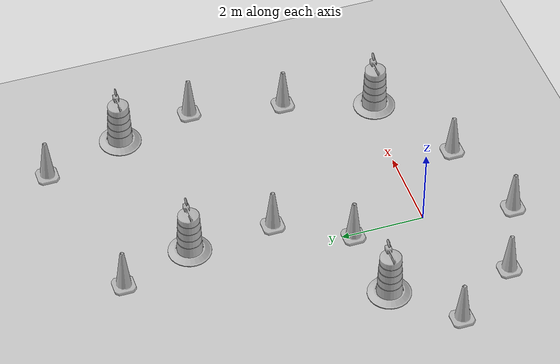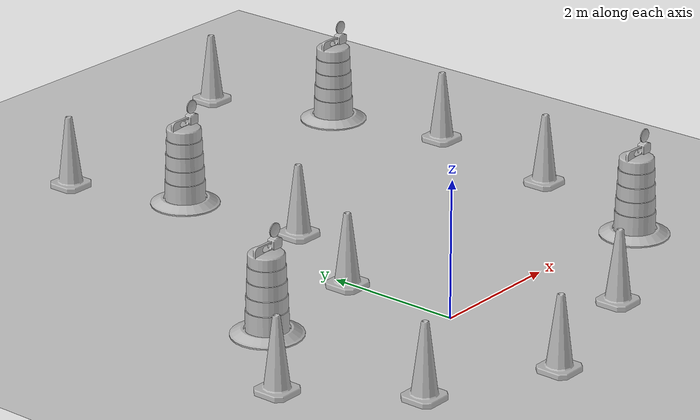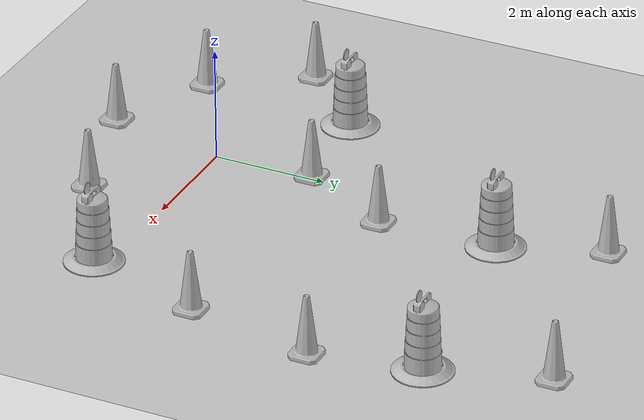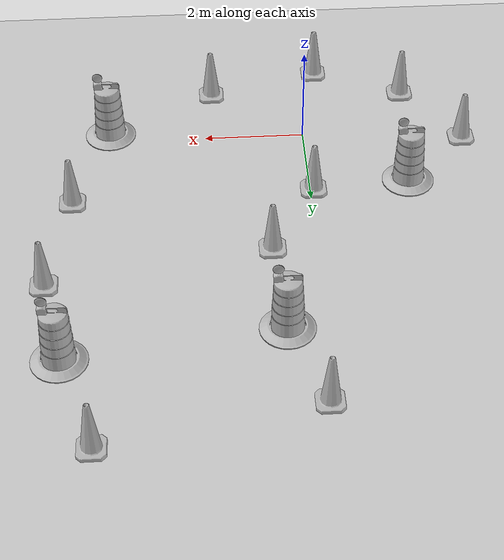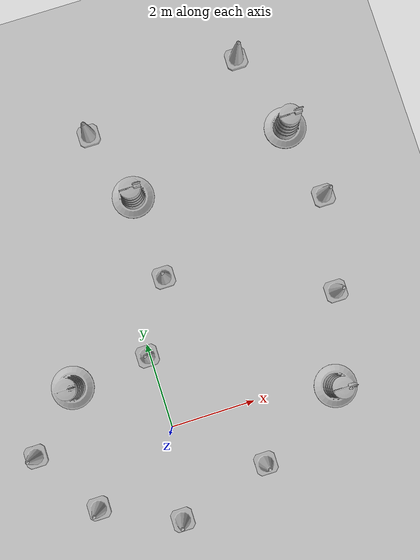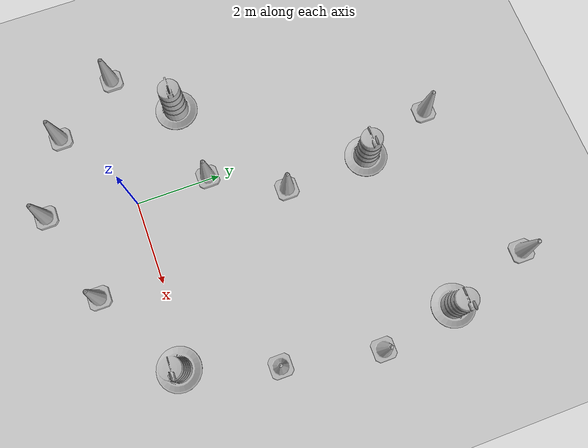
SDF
<sdf version="1.7">
 <world name="default">
  <light name="sun" type="directional">
   <pose>0 0 10 0 -0 0</pose>
   <diffuse>0.8 0.8 0.8 1</diffuse>
   <specular>0.2 0.2 0.2 1</specular>
   <attenuation>
    <range>1000</range>
    <constant>0.9</constant>
    <linear>0.01</linear>
    <quadratic>0.001</quadratic>
   </attenuation>
   <direction>-0.5 0.1 -0.9</direction>
   <spot><inner_angle>0</inner_angle><outer_angle>0</outer_angle><falloff>0</falloff></spot>
  </light>
  <model name="ground_plane">
   <static>1</static>
   <link name="link">
    <collision name="collision">
     <geometry><plane><normal>0 0 1</normal><size>100 100</size></plane></geometry>
     <surface>
      <contact><collide_bitmask>65535</collide_bitmask></contact>
      <friction><ode><mu>100</mu><mu2>50</mu2></ode></friction>
     </surface>
    </collision>
    <visual name="visual">
     <cast_shadows>0</cast_shadows>
     <geometry><plane><normal>0 0 1</normal><size>100 100</size></plane></geometry>
     <material>
      <script><uri>file://media/materials/scripts/gazebo.material</uri><name>Gazebo/Grey</name></script>
     </material>
    </visual>
   </link>
  </model>
  <gravity>0 0 -9.8</gravity>
  <magnetic_field>6e-06 2.3e-05 -4.2e-05</magnetic_field>
  <atmosphere type="adiabatic"/>
  <physics type="ode">
   <max_step_size>0.001</max_step_size>
   <real_time_factor>1</real_time_factor>
   <real_time_update_rate>1000</real_time_update_rate>
  </physics>
  <scene><ambient>0.4 0.4 0.4 1</ambient><background>0.7 0.7 0.7 1</background><shadows>1</shadows></scene>
  <audio><device>default</device></audio>
  <spherical_coordinates>
   <surface_model>EARTH_WGS84</surface_model>
   <latitude_deg>0</latitude_deg>
   <longitude_deg>0</longitude_deg>
   <elevation>0</elevation>
   <heading_deg>0</heading_deg>
  </spherical_coordinates>
  <model name="Construction Barrel">
   <link name="link">
    <inertial>
     <pose>0 0 0.4 0 -0 0</pose>
     <mass>500</mass>
     <inertia><ixx>51.2096</ixx><iyy>51.2096</iyy><izz>25</izz><ixy>0</ixy><ixz>0</ixz><iyz>0</iyz></inertia>
    </inertial>
    <collision name="collision">
     <geometry><mesh><uri>model://construction_barrel/meshes/construction_barrel.dae</uri></mesh></geometry>
    </collision>
    <visual name="visual">
     <geometry><mesh><uri>model://construction_barrel/meshes/construction_barrel.dae</uri></mesh></geometry>
    </visual>
   </link>
   <pose>-1.95305 1.56322 -2e-06 7e-06 -4e-06 -2.3e-05</pose>
  </model>
  <model name="Construction Cone">
   <link name="link">
    <collision name="collision">
     <geometry>
      <mesh><scale>10 10 10</scale><uri>model://construction_cone/meshes/construction_cone.dae</uri></mesh>
     </geometry>
    </collision>
    <visual name="visual">
     <geometry>
      <mesh><scale>10 10 10</scale><uri>model://construction_cone/meshes/construction_cone.dae</uri></mesh>
     </geometry>
    </visual>
    <inertial>
     <inertia><ixx>1</ixx><ixy>0</ixy><ixz>0</ixz><iyy>1</iyy><iyz>0</iyz><izz>1</izz></inertia>
     <mass>1</mass>
    </inertial>
   </link>
   <pose>-2.16556 -1.27217 -1e-05 0 1e-06 0</pose>
  </model>
  <model name="Construction Cone_clone">
   <link name="link">
    <collision name="collision">
     <geometry>
      <mesh><scale>10 10 10</scale><uri>model://construction_cone/meshes/construction_cone.dae</uri></mesh>
     </geometry>
    </collision>
    <visual name="visual">
     <geometry>
      <mesh><scale>10 10 10</scale><uri>model://construction_cone/meshes/construction_cone.dae</uri></mesh>
     </geometry>
    </visual>
    <inertial>
     <inertia><ixx>1</ixx><ixy>0</ixy><ixz>0</ixz><iyy>1</iyy><iyz>0</iyz><izz>1</izz></inertia>
     <mass>1</mass>
    </inertial>
   </link>
   <pose>-0.393419 -2.09765 -0 0 -1e-06 0</pose>
  </model>
  <model name="Construction Cone_clone_0">
   <link name="link">
    <collision name="collision">
     <geometry>
      <mesh><scale>10 10 10</scale><uri>model://construction_cone/meshes/construction_cone.dae</uri></mesh>
     </geometry>
    </collision>
    <visual name="visual">
     <geometry>
      <mesh><scale>10 10 10</scale><uri>model://construction_cone/meshes/construction_cone.dae</uri></mesh>
     </geometry>
    </visual>
    <inertial>
     <inertia><ixx>1</ixx><ixy>0</ixy><ixz>0</ixz><iyy>1</iyy><iyz>0</iyz><izz>1</izz></inertia>
     <mass>1</mass>
    </inertial>
   </link>
   <pose>1.82801 -1.44697 0 -1e-06 0 0</pose>
  </model>
  <model name="Construction Barrel_clone">
   <link name="link">
    <inertial>
     <pose>0 0 0.4 0 -0 0</pose>
     <mass>500</mass>
     <inertia><ixx>51.2096</ixx><iyy>51.2096</iyy><izz>25</izz><ixy>0</ixy><ixz>0</ixz><iyz>0</iyz></inertia>
    </inertial>
    <collision name="collision">
     <geometry><mesh><uri>model://construction_barrel/meshes/construction_barrel.dae</uri></mesh></geometry>
    </collision>
    <visual name="visual">
     <geometry><mesh><uri>model://construction_barrel/meshes/construction_barrel.dae</uri></mesh></geometry>
    </visual>
   </link>
   <pose>3.93408 -0.235384 -0 0 0 -2.5e-05</pose>
  </model>
  <model name="Construction Cone_clone_0_clone">
   <link name="link">
    <collision name="collision">
     <geometry>
      <mesh><scale>10 10 10</scale><uri>model://construction_cone/meshes/construction_cone.dae</uri></mesh>
     </geometry>
    </collision>
    <visual name="visual">
     <geometry>
      <mesh><scale>10 10 10</scale><uri>model://construction_cone/meshes/construction_cone.dae</uri></mesh>
     </geometry>
    </visual>
    <inertial>
     <inertia><ixx>1</ixx><ixy>0</ixy><ixz>0</ixz><iyy>1</iyy><iyz>0</iyz><izz>1</izz></inertia>
     <mass>1</mass>
    </inertial>
   </link>
   <pose>-0.06439 1.74713 -0 -0 -0 -0</pose>
  </model>
  <model name="Construction Cone_clone_0_clone_0">
   <link name="link">
    <collision name="collision">
     <geometry>
      <mesh><scale>10 10 10</scale><uri>model://construction_cone/meshes/construction_cone.dae</uri></mesh>
     </geometry>
    </collision>
    <visual name="visual">
     <geometry>
      <mesh><scale>10 10 10</scale><uri>model://construction_cone/meshes/construction_cone.dae</uri></mesh>
     </geometry>
    </visual>
    <inertial>
     <inertia><ixx>1</ixx><ixy>0</ixy><ixz>0</ixz><iyy>1</iyy><iyz>0</iyz><izz>1</izz></inertia>
     <mass>1</mass>
    </inertial>
   </link>
   <pose>0.850562 3.40459 -1e-05 0 1e-06 0</pose>
  </model>
  <model name="Construction Cone_clone_0_clone_1">
   <link name="link">
    <collision name="collision">
     <geometry>
      <mesh><scale>10 10 10</scale><uri>model://construction_cone/meshes/construction_cone.dae</uri></mesh>
     </geometry>
    </collision>
    <visual name="visual">
     <geometry>
      <mesh><scale>10 10 10</scale><uri>model://construction_cone/meshes/construction_cone.dae</uri></mesh>
     </geometry>
    </visual>
    <inertial>
     <inertia><ixx>1</ixx><ixy>0</ixy><ixz>0</ixz><iyy>1</iyy><iyz>0</iyz><izz>1</izz></inertia>
     <mass>1</mass>
    </inertial>
   </link>
   <pose>0.142021 7.19837 -0 0 -0 0</pose>
  </model>
  <model name="Construction Cone_clone_0_clone_2">
   <link name="link">
    <collision name="collision">
     <geometry>
      <mesh><scale>10 10 10</scale><uri>model://construction_cone/meshes/construction_cone.dae</uri></mesh>
     </geometry>
    </collision>
    <visual name="visual">
     <geometry>
      <mesh><scale>10 10 10</scale><uri>model://construction_cone/meshes/construction_cone.dae</uri></mesh>
     </geometry>
    </visual>
    <inertial>
     <inertia><ixx>1</ixx><ixy>0</ixy><ixz>0</ixz><iyy>1</iyy><iyz>0</iyz><izz>1</izz></inertia>
     <mass>1</mass>
    </inertial>
   </link>
   <pose>5.06325 4.13954 0 -0 -0 -0</pose>
  </model>
  <model name="Construction Cone_clone_0_clone_3">
   <link name="link">
    <collision name="collision">
     <geometry>
      <mesh><scale>10 10 10</scale><uri>model://construction_cone/meshes/construction_cone.dae</uri></mesh>
     </geometry>
    </collision>
    <visual name="visual">
     <geometry>
      <mesh><scale>10 10 10</scale><uri>model://construction_cone/meshes/construction_cone.dae</uri></mesh>
     </geometry>
    </visual>
    <inertial>
     <inertia><ixx>1</ixx><ixy>0</ixy><ixz>0</ixz><iyy>1</iyy><iyz>0</iyz><izz>1</izz></inertia>
     <mass>1</mass>
    </inertial>
   </link>
   <pose>-3.22094 0.296625 -0 0 -0 0</pose>
  </model>
  <model name="Construction Cone_clone_0_clone_4">
   <link name="link">
    <collision name="collision">
     <geometry>
      <mesh><scale>10 10 10</scale><uri>model://construction_cone/meshes/construction_cone.dae</uri></mesh>
     </geometry>
    </collision>
    <visual name="visual">
     <geometry>
      <mesh><scale>10 10 10</scale><uri>model://construction_cone/meshes/construction_cone.dae</uri></mesh>
     </geometry>
    </visual>
    <inertial>
     <inertia><ixx>1</ixx><ixy>0</ixy><ixz>0</ixz><iyy>1</iyy><iyz>0</iyz><izz>1</izz></inertia>
     <mass>1</mass>
    </inertial>
   </link>
   <pose>4.63278 1.88128 -0 0 -0 0</pose>
  </model>
  <model name="Construction Cone_clone_0_clone_5">
   <link name="link">
    <collision name="collision">
     <geometry>
      <mesh><scale>10 10 10</scale><uri>model://construction_cone/meshes/construction_cone.dae</uri></mesh>
     </geometry>
    </collision>
    <visual name="visual">
     <geometry>
      <mesh><scale>10 10 10</scale><uri>model://construction_cone/meshes/construction_cone.dae</uri></mesh>
     </geometry>
    </visual>
    <inertial>
     <inertia><ixx>1</ixx><ixy>0</ixy><ixz>0</ixz><iyy>1</iyy><iyz>0</iyz><izz>1</izz></inertia>
     <mass>1</mass>
    </inertial>
   </link>
   <pose>4.08938 7.94508 -0 0 -0 0</pose>
  </model>
  <model name="Construction Barrel_clone_0">
   <link name="link">
    <inertial>
     <pose>0 0 0.4 0 -0 0</pose>
     <mass>500</mass>
     <inertia><ixx>51.2096</ixx><iyy>51.2096</iyy><izz>25</izz><ixy>0</ixy><ixz>0</ixz><iyz>0</iyz></inertia>
    </inertial>
    <collision name="collision">
     <geometry><mesh><uri>model://construction_barrel/meshes/construction_barrel.dae</uri></mesh></geometry>
    </collision>
    <visual name="visual">
     <geometry><mesh><uri>model://construction_barrel/meshes/construction_barrel.dae</uri></mesh></geometry>
    </visual>
   </link>
   <pose>0.723485 5.45631 -2e-06 6e-06 -3e-06 -2.4e-05</pose>
  </model>
  <model name="Construction Barrel_clone_1">
   <link name="link">
    <inertial>
     <pose>0 0 0.4 0 -0 0</pose>
     <mass>500</mass>
     <inertia><ixx>51.2096</ixx><iyy>51.2096</iyy><izz>25</izz><ixy>0</ixy><ixz>0</ixz><iyz>0</iyz></inertia>
    </inertial>
    <collision name="collision">
     <geometry><mesh><uri>model://construction_barrel/meshes/construction_barrel.dae</uri></mesh></geometry>
    </collision>
    <visual name="visual">
     <geometry><mesh><uri>model://construction_barrel/meshes/construction_barrel.dae</uri></mesh></geometry>
    </visual>
   </link>
   <pose>4.70059 5.9803 -4e-06 -5e-06 -7e-06 -2.2e-05</pose>
  </model>
 </world>
</sdf>
